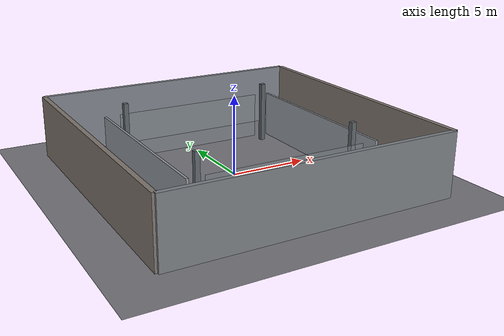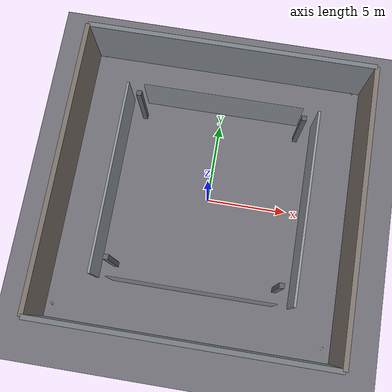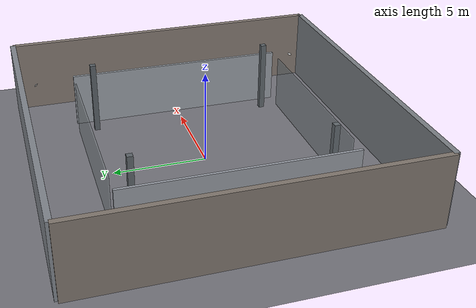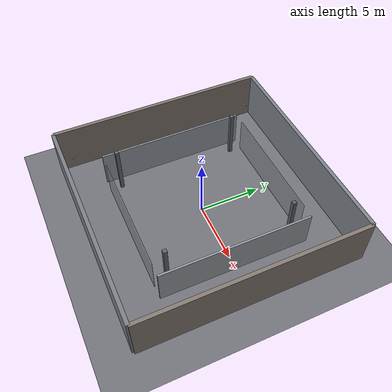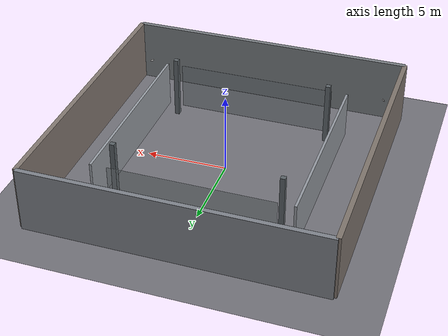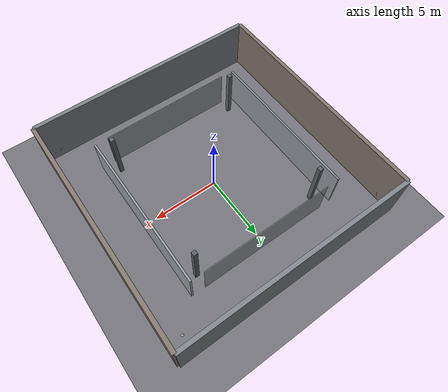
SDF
<?xml version="1.0"?>
<sdf version="1.7">
  <world name="industrial_facility_world">

    <!-- Physics settings -->
    <physics name="default_physics" type="ode">
      <max_step_size>0.001</max_step_size>
      <real_time_factor>1.0</real_time_factor>
      <real_time_update_rate>1000</real_time_update_rate>
    </physics>

    <!-- Essential Gazebo Plugins -->
    <plugin filename="gz-sim-physics-system" name="gz::sim::systems::Physics"></plugin>
    <plugin filename="gz-sim-sensors-system" name="gz::sim::systems::Sensors">
      <render_engine>ogre2</render_engine>
    </plugin>
    <plugin filename="gz-sim-scene-broadcaster-system" name="gz::sim::systems::SceneBroadcaster"></plugin>
    <plugin filename="gz-sim-user-commands-system" name="gz::sim::systems::UserCommands"></plugin>

    <!-- Scene settings - industrial atmosphere -->
    <scene>
      <ambient>0.45 0.45 0.48 1.0</ambient>
      <background>0.25 0.28 0.3 1.0</background>
      <shadows>true</shadows>
    </scene>

    <!-- Industrial facility lighting -->
    <light type="directional" name="sun">
      <cast_shadows>true</cast_shadows>
      <pose>10 10 18 0 0 0</pose>
      <diffuse>0.75 0.75 0.8 1</diffuse>
      <specular>0.35 0.35 0.35 1</specular>
      <direction>-0.4 -0.4 -0.85</direction>
    </light>

    <!-- Industrial overhead lights -->
    <light type="point" name="facility_light_1">
      <pose>4 4 4 0 0 0</pose>
      <diffuse>0.7 0.7 0.65 1</diffuse>
      <specular>0.25 0.25 0.25 1</specular>
      <attenuation>
        <range>18</range>
        <linear>0.09</linear>
        <quadratic>0.008</quadratic>
      </attenuation>
    </light>

    <light type="point" name="facility_light_2">
      <pose>-4 -4 4 0 0 0</pose>
      <diffuse>0.7 0.7 0.65 1</diffuse>
      <specular>0.25 0.25 0.25 1</specular>
      <attenuation>
        <range>18</range>
        <linear>0.09</linear>
        <quadratic>0.008</quadratic>
      </attenuation>
    </light>

    <light type="point" name="facility_light_3">
      <pose>4 -4 4 0 0 0</pose>
      <diffuse>0.68 0.68 0.62 1</diffuse>
      <specular>0.22 0.22 0.22 1</specular>
      <attenuation>
        <range>18</range>
        <linear>0.09</linear>
        <quadratic>0.008</quadratic>
      </attenuation>
    </light>

    <!-- Ground Plane - industrial concrete -->
    <model name="ground_plane">
      <static>true</static>
      <link name="link">
        <collision name="collision">
          <geometry>
            <plane>
              <normal>0 0 1</normal>
              <size>100 100</size>
            </plane>
          </geometry>
        </collision>
        <visual name="visual">
          <geometry>
            <plane>
              <normal>0 0 1</normal>
              <size>100 100</size>
            </plane>
          </geometry>
          <material>
            <ambient>0.35 0.35 0.38 1</ambient>
            <diffuse>0.45 0.45 0.48 1</diffuse>
            <specular>0.15 0.15 0.15 1</specular>
            <pbr>
              <metal>
                <roughness>0.85</roughness>
                <metalness>0.12</metalness>
              </metal>
            </pbr>
          </material>
        </visual>
      </link>
    </model>

    <!-- Industrial Facility Layout: Open floor plan with structural columns -->

    <!-- Perimeter walls - reinforced concrete -->
    <model name="facility_wall_north">
      <static>true</static>
      <pose>0 9 2 0 0 0</pose>
      <link name="link">
        <collision name="collision">
          <geometry>
            <box>
              <size>18 0.3 4</size>
            </box>
          </geometry>
        </collision>
        <visual name="visual">
          <geometry>
            <box>
              <size>18 0.3 4</size>
            </box>
          </geometry>
          <material>
            <ambient>0.4 0.42 0.45 1</ambient>
            <diffuse>0.5 0.52 0.55 1</diffuse>
            <specular>0.18 0.18 0.2 1</specular>
            <pbr>
              <metal>
                <roughness>0.82</roughness>
                <metalness>0.15</metalness>
              </metal>
            </pbr>
          </material>
        </visual>
      </link>
    </model>

    <model name="facility_wall_south">
      <static>true</static>
      <pose>0 -9 2 0 0 0</pose>
      <link name="link">
        <collision name="collision">
          <geometry>
            <box>
              <size>18 0.3 4</size>
            </box>
          </geometry>
        </collision>
        <visual name="visual">
          <geometry>
            <box>
              <size>18 0.3 4</size>
            </box>
          </geometry>
          <material>
            <ambient>0.38 0.4 0.42 1</ambient>
            <diffuse>0.48 0.5 0.52 1</diffuse>
            <specular>0.17 0.17 0.19 1</specular>
            <pbr>
              <metal>
                <roughness>0.83</roughness>
                <metalness>0.14</metalness>
              </metal>
            </pbr>
          </material>
        </visual>
      </link>
    </model>

    <model name="facility_wall_east">
      <static>true</static>
      <pose>9 0 2 0 0 0</pose>
      <link name="link">
        <collision name="collision">
          <geometry>
            <box>
              <size>0.3 18 4</size>
            </box>
          </geometry>
        </collision>
        <visual name="visual">
          <geometry>
            <box>
              <size>0.3 18 4</size>
            </box>
          </geometry>
          <material>
            <ambient>0.42 0.38 0.35 1</ambient>
            <diffuse>0.52 0.48 0.45 1</diffuse>
            <specular>0.16 0.15 0.14 1</specular>
            <pbr>
              <metal>
                <roughness>0.88</roughness>
                <metalness>0.1</metalness>
              </metal>
            </pbr>
          </material>
        </visual>
      </link>
    </model>

    <model name="facility_wall_west">
      <static>true</static>
      <pose>-9 0 2 0 0 0</pose>
      <link name="link">
        <collision name="collision">
          <geometry>
            <box>
              <size>0.3 18 4</size>
            </box>
          </geometry>
        </collision>
        <visual name="visual">
          <geometry>
            <box>
              <size>0.3 18 4</size>
            </box>
          </geometry>
          <material>
            <ambient>0.4 0.36 0.33 1</ambient>
            <diffuse>0.5 0.46 0.43 1</diffuse>
            <specular>0.15 0.14 0.13 1</specular>
            <pbr>
              <metal>
                <roughness>0.87</roughness>
                <metalness>0.11</metalness>
              </metal>
            </pbr>
          </material>
        </visual>
      </link>
    </model>

    <!-- Structural columns - steel I-beams -->
    <model name="column_1">
      <static>true</static>
      <pose>5 5 2 0 0 0</pose>
      <link name="link">
        <collision name="collision">
          <geometry>
            <box>
              <size>0.3 0.3 4</size>
            </box>
          </geometry>
        </collision>
        <visual name="visual">
          <geometry>
            <box>
              <size>0.3 0.3 4</size>
            </box>
          </geometry>
          <material>
            <ambient>0.25 0.28 0.3 1</ambient>
            <diffuse>0.35 0.38 0.4 1</diffuse>
            <specular>0.5 0.5 0.5 1</specular>
            <pbr>
              <metal>
                <roughness>0.35</roughness>
                <metalness>0.75</metalness>
              </metal>
            </pbr>
          </material>
        </visual>
      </link>
    </model>

    <model name="column_2">
      <static>true</static>
      <pose>5 -5 2 0 0 0</pose>
      <link name="link">
        <collision name="collision">
          <geometry>
            <box>
              <size>0.3 0.3 4</size>
            </box>
          </geometry>
        </collision>
        <visual name="visual">
          <geometry>
            <box>
              <size>0.3 0.3 4</size>
            </box>
          </geometry>
          <material>
            <ambient>0.27 0.3 0.32 1</ambient>
            <diffuse>0.37 0.4 0.42 1</diffuse>
            <specular>0.48 0.48 0.48 1</specular>
            <pbr>
              <metal>
                <roughness>0.36</roughness>
                <metalness>0.74</metalness>
              </metal>
            </pbr>
          </material>
        </visual>
      </link>
    </model>

    <model name="column_3">
      <static>true</static>
      <pose>-5 5 2 0 0 0</pose>
      <link name="link">
        <collision name="collision">
          <geometry>
            <box>
              <size>0.3 0.3 4</size>
            </box>
          </geometry>
        </collision>
        <visual name="visual">
          <geometry>
            <box>
              <size>0.3 0.3 4</size>
            </box>
          </geometry>
          <material>
            <ambient>0.26 0.29 0.31 1</ambient>
            <diffuse>0.36 0.39 0.41 1</diffuse>
            <specular>0.49 0.49 0.49 1</specular>
            <pbr>
              <metal>
                <roughness>0.37</roughness>
                <metalness>0.73</metalness>
              </metal>
            </pbr>
          </material>
        </visual>
      </link>
    </model>

    <model name="column_4">
      <static>true</static>
      <pose>-5 -5 2 0 0 0</pose>
      <link name="link">
        <collision name="collision">
          <geometry>
            <box>
              <size>0.3 0.3 4</size>
            </box>
          </geometry>
        </collision>
        <visual name="visual">
          <geometry>
            <box>
              <size>0.3 0.3 4</size>
            </box>
          </geometry>
          <material>
            <ambient>0.28 0.31 0.33 1</ambient>
            <diffuse>0.38 0.41 0.43 1</diffuse>
            <specular>0.47 0.47 0.47 1</specular>
            <pbr>
              <metal>
                <roughness>0.38</roughness>
                <metalness>0.72</metalness>
              </metal>
            </pbr>
          </material>
        </visual>
      </link>
    </model>

    <!-- Work area dividers - chain link fence style -->
    <model name="divider_fence_1">
      <static>true</static>
      <pose>0 6 1.5 0 0 1.5708</pose>
      <link name="link">
        <collision name="collision">
          <geometry>
            <box>
              <size>0.05 10 3</size>
            </box>
          </geometry>
        </collision>
        <visual name="visual">
          <geometry>
            <box>
              <size>0.05 10 3</size>
            </box>
          </geometry>
          <material>
            <ambient>0.45 0.48 0.5 0.7</ambient>
            <diffuse>0.55 0.58 0.6 0.7</diffuse>
            <specular>0.35 0.35 0.35 1</specular>
            <pbr>
              <metal>
                <roughness>0.45</roughness>
                <metalness>0.65</metalness>
              </metal>
            </pbr>
          </material>
        </visual>
      </link>
    </model>

    <model name="divider_fence_2">
      <static>true</static>
      <pose>0 -6 1.5 0 0 1.5708</pose>
      <link name="link">
        <collision name="collision">
          <geometry>
            <box>
              <size>0.05 10 3</size>
            </box>
          </geometry>
        </collision>
        <visual name="visual">
          <geometry>
            <box>
              <size>0.05 10 3</size>
            </box>
          </geometry>
          <material>
            <ambient>0.43 0.46 0.48 0.7</ambient>
            <diffuse>0.53 0.56 0.58 0.7</diffuse>
            <specular>0.34 0.34 0.34 1</specular>
            <pbr>
              <metal>
                <roughness>0.46</roughness>
                <metalness>0.64</metalness>
              </metal>
            </pbr>
          </material>
        </visual>
      </link>
    </model>

    <!-- Storage/loading area walls - corrugated steel -->
    <model name="loading_wall_1">
      <static>true</static>
      <pose>6 0 1.5 0 0 0</pose>
      <link name="link">
        <collision name="collision">
          <geometry>
            <box>
              <size>0.15 12 3</size>
            </box>
          </geometry>
        </collision>
        <visual name="visual">
          <geometry>
            <box>
              <size>0.15 12 3</size>
            </box>
          </geometry>
          <material>
            <ambient>0.5 0.52 0.55 1</ambient>
            <diffuse>0.6 0.62 0.65 1</diffuse>
            <specular>0.4 0.4 0.42 1</specular>
            <pbr>
              <metal>
                <roughness>0.42</roughness>
                <metalness>0.68</metalness>
              </metal>
            </pbr>
          </material>
        </visual>
      </link>
    </model>

    <model name="loading_wall_2">
      <static>true</static>
      <pose>-6 0 1.5 0 0 0</pose>
      <link name="link">
        <collision name="collision">
          <geometry>
            <box>
              <size>0.15 12 3</size>
            </box>
          </geometry>
        </collision>
        <visual name="visual">
          <geometry>
            <box>
              <size>0.15 12 3</size>
            </box>
          </geometry>
          <material>
            <ambient>0.48 0.5 0.53 1</ambient>
            <diffuse>0.58 0.6 0.63 1</diffuse>
            <specular>0.38 0.38 0.4 1</specular>
            <pbr>
              <metal>
                <roughness>0.43</roughness>
                <metalness>0.67</metalness>
              </metal>
            </pbr>
          </material>
        </visual>
      </link>
    </model>

    <!-- WhyCode Markers -->
    <include>
      <uri>model://whycode_0</uri>
      <name>marker_0</name>
      <pose>8 8 1.8 0 0 -2.356</pose>
    </include>

    <include>
      <uri>model://whycode_1</uri>
      <name>marker_1</name>
      <pose>-8 8 1.8 0 0 2.356</pose>
    </include>

    <include>
      <uri>model://whycode_2</uri>
      <name>marker_2</name>
      <pose>-8 -8 1.8 0 0 0.785</pose>
    </include>

    <include>
      <uri>model://whycode_3</uri>
      <name>marker_3</name>
      <pose>8 -8 1.8 0 0 -0.785</pose>
    </include>

  </world>
</sdf>

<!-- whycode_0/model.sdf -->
<sdf version="1.7">
  <model name="WhyCode_0">
    <static>true</static>
    <link name="link">
      <pose>0 0 0 0 2.0944 0</pose>
      <collision name="collision">
        <geometry>
          <box>
            <size>0.2 0.2 0.01</size>
          </box>
        </geometry>
      </collision>
      <visual name="visual">
        <geometry>
          <box>
            <size>0.2 0.2 0.01</size>
          </box>
        </geometry>
        <material>
          <ambient>1 1 1 1</ambient>
          <diffuse>1 1 1 1</diffuse>
          <specular>0 0 0 1</specular>
          <pbr>
            <metal>
              <albedo_map>model://whycode_0/materials/textures/whycode_1.png</albedo_map>
              <roughness>0.5</roughness>
              <metalness>0.0</metalness>
            </metal>
          </pbr>
          <!-- Fallback for Ogre 1.x -->
          <script>
            <uri>model://whycode_0/materials/scripts</uri>
            <uri>model://whycode_0/materials/textures</uri>
            <name>WhyCode_0/Marker</name>
          </script>
        </material>
      </visual>
    </link>
  </model>
</sdf>

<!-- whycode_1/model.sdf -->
<sdf version="1.7">
  <model name="WhyCode_1">
    <static>true</static>
    <link name="link">
      <pose>0 0 0 0 -2.0944 0</pose>
      <collision name="collision">
        <geometry>
          <box>
            <size>0.2 0.2 0.01</size>
          </box>
        </geometry>
      </collision>
      <visual name="visual">
        <geometry>
          <box>
            <size>0.2 0.2 0.01</size>
          </box>
        </geometry>
        <material>
          <ambient>1 1 1 1</ambient>
          <diffuse>1 1 1 1</diffuse>
          <specular>0 0 0 1</specular>
          <pbr>
            <metal>
              <albedo_map>model://whycode_1/materials/textures/whycode_2.png</albedo_map>
              <roughness>0.5</roughness>
              <metalness>0.0</metalness>
            </metal>
          </pbr>
          <!-- Fallback for Ogre 1.x -->
          <script>
            <uri>model://whycode_1/materials/scripts</uri>
            <uri>model://whycode_1/materials/textures</uri>
            <name>WhyCode_1/Marker</name>
          </script>
        </material>
      </visual>
    </link>
  </model>
</sdf>

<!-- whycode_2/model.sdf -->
<sdf version="1.7">
  <model name="WhyCode_2">
    <static>true</static>
    <link name="link">
      <pose>0 0 0 0 2.0944 0</pose>
      <collision name="collision">
        <geometry>
          <box>
            <size>0.2 0.2 0.01</size>
          </box>
        </geometry>
      </collision>
      <visual name="visual">
        <geometry>
          <box>
            <size>0.2 0.2 0.01</size>
          </box>
        </geometry>
        <material>
          <ambient>1 1 1 1</ambient>
          <diffuse>1 1 1 1</diffuse>
          <specular>0 0 0 1</specular>
          <pbr>
            <metal>
              <albedo_map>model://whycode_2/materials/textures/whycode_3.png</albedo_map>
              <roughness>0.5</roughness>
              <metalness>0.0</metalness>
            </metal>
          </pbr>
          <!-- Fallback for Ogre 1.x -->
          <script>
            <uri>model://whycode_2/materials/scripts</uri>
            <uri>model://whycode_2/materials/textures</uri>
            <name>WhyCode_2/Marker</name>
          </script>
        </material>
      </visual>
    </link>
  </model>
</sdf>

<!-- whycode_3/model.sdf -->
<sdf version="1.7">
  <model name="WhyCode_3">
    <static>true</static>
    <link name="link">
      <pose>0 0 0 0 -2.0944 0</pose>
      <collision name="collision">
        <geometry>
          <box>
            <size>0.2 0.2 0.01</size>
          </box>
        </geometry>
      </collision>
      <visual name="visual">
        <geometry>
          <box>
            <size>0.2 0.2 0.01</size>
          </box>
        </geometry>
        <material>
          <ambient>1 1 1 1</ambient>
          <diffuse>1 1 1 1</diffuse>
          <specular>0 0 0 1</specular>
          <pbr>
            <metal>
              <albedo_map>model://whycode_3/materials/textures/whycode_4.png</albedo_map>
              <roughness>0.5</roughness>
              <metalness>0.0</metalness>
            </metal>
          </pbr>
          <!-- Fallback for Ogre 1.x -->
          <script>
            <uri>model://whycode_3/materials/scripts</uri>
            <uri>model://whycode_3/materials/textures</uri>
            <name>WhyCode_3/Marker</name>
          </script>
        </material>
      </visual>
    </link>
  </model>
</sdf>
